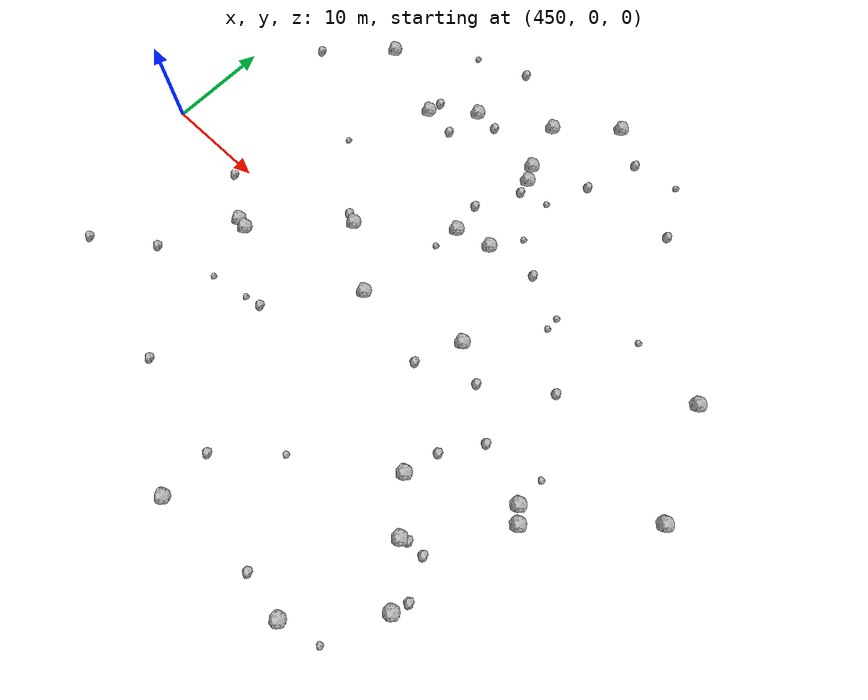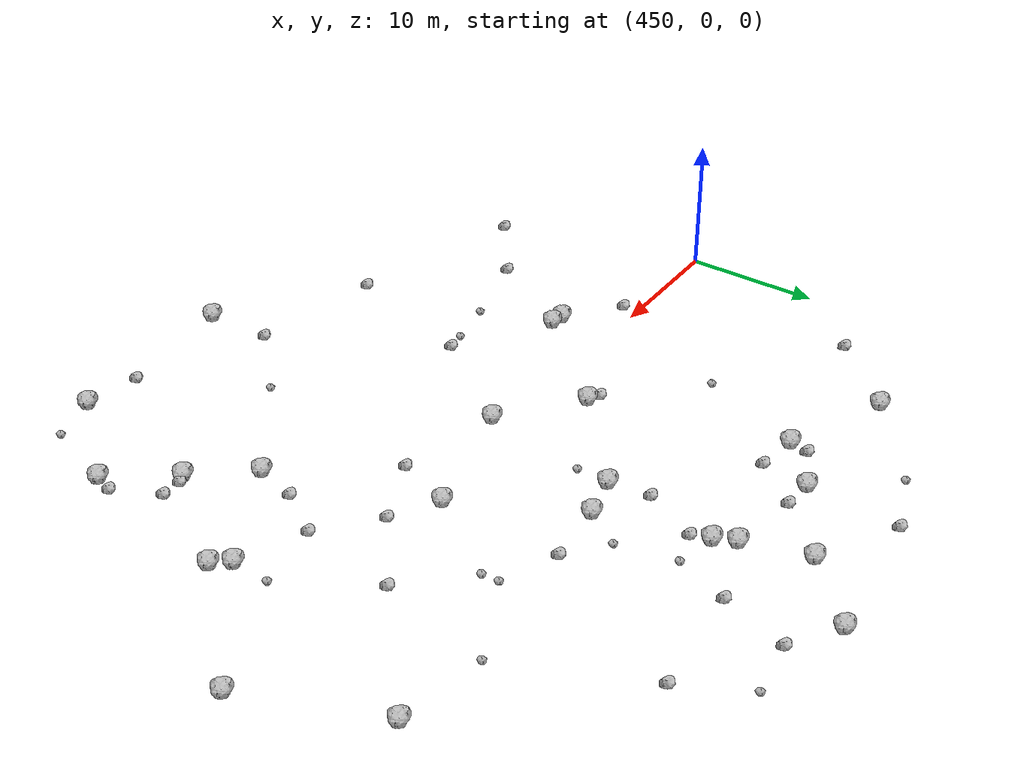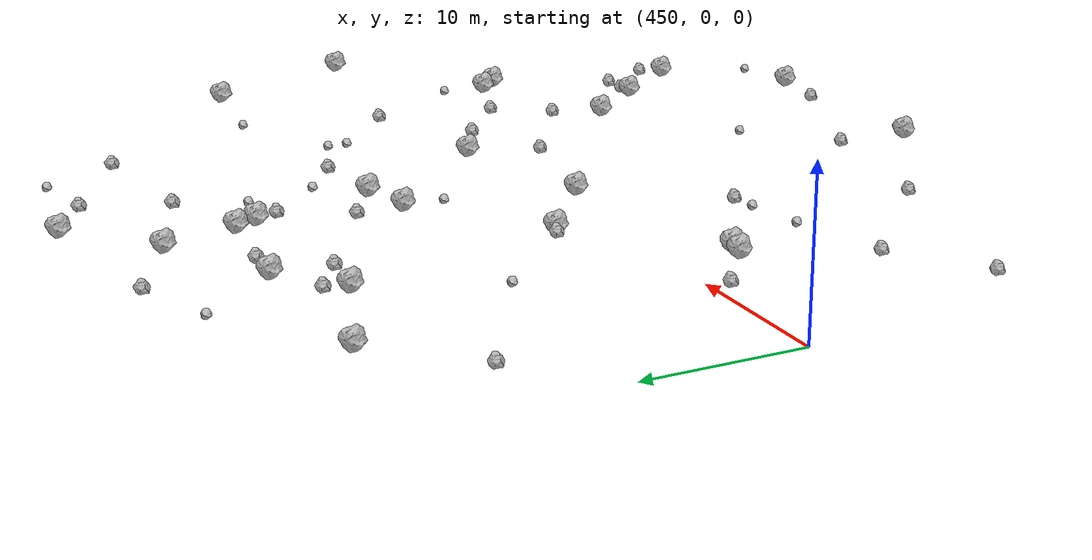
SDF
<sdf version="1.6">
 <world name="default">
  <include><uri>model://sun</uri></include>
  <model name="rock1_12_4">
   <include><uri>model://rock1</uri><pose>491.72888206127305 -26.128959061880327 0.5 0 0 0</pose></include>
  </model>
  <model name="rock1_12_5">
   <include><uri>model://rock1</uri><pose>491.17599531408433 -10.815141260491345 0.5 0 0 0</pose></include>
  </model>
  <model name="rock1_12_6">
   <include><uri>model://rock1</uri><pose>460.48094152049924 20.681704706840215 0.5 0 0 0</pose></include>
  </model>
  <model name="rock1_12_7">
   <include><uri>model://rock1</uri><pose>480.7092860227234 18.195234829523372 0.5 0 0 0</pose></include>
  </model>
  <model name="rock1_12_8">
   <include><uri>model://rock1</uri><pose>497.92684535685635 -19.54498118983572 0.5 0 0 0</pose></include>
  </model>
  <model name="rock1_12_9">
   <include><uri>model://rock1</uri><pose>471.52834381823504 3.124001189851157 0.5 0 0 0</pose></include>
  </model>
  <model name="rock1_12_10">
   <include><uri>model://rock1</uri><pose>468.1953937211347 17.523532336435686 0.5 0 0 0</pose></include>
  </model>
  <model name="rock1_12_11">
   <include><uri>model://rock1</uri><pose>479.9837642435969 19.723402124626624 0.5 0 0 0</pose></include>
  </model>
  <model name="rock1_12_12">
   <include><uri>model://rock1</uri><pose>500.904421001352 -7.401620335677297 0.5 0 0 0</pose></include>
  </model>
  <model name="rock1_12_13">
   <include><uri>model://rock1</uri><pose>482.6170549437636 10.220183432512592 0.5 0 0 0</pose></include>
  </model>
  <model name="rock1_12_14">
   <include><uri>model://rock1</uri><pose>478.67018094687296 24.5998001057999 0.5 0 0 0</pose></include>
  </model>
  <model name="rock1_12_15">
   <include><uri>model://rock1</uri><pose>494.52879217745857 -14.94457016396462 0.5 0 0 0</pose></include>
  </model>
  <model name="rock1_12_16">
   <include><uri>model://rock1</uri><pose>477.1940128024749 -1.283001773061308 0.5 0 0 0</pose></include>
  </model>
  <model name="rock1_12_17">
   <include><uri>model://rock1</uri><pose>483.8165759689294 29.213430397865274 0.5 0 0 0</pose></include>
  </model>
  <model name="rock1_12_18">
   <include><uri>model://rock1</uri><pose>487.08707115971083 1.2791204138350345 0.5 0 0 0</pose></include>
  </model>
  <model name="rock1_12_19">
   <include><uri>model://rock1</uri><pose>463.2533776544142 -4.206330978312472 0.5 0 0 0</pose></include>
  </model>
  <model name="rock1_12_20">
   <include><uri>model://rock1</uri><pose>477.8085389269301 -26.234081930782832 0.5 0 0 0</pose></include>
  </model>
  <model name="rock1_12_21">
   <include><uri>model://rock1</uri><pose>479.19385402026546 9.399088489368957 0.5 0 0 0</pose></include>
  </model>
  <model name="rock1_12_22">
   <include><uri>model://rock1</uri><pose>499.89984855608986 -6.163544614067344 0.5 0 0 0</pose></include>
  </model>
  <model name="rock1_12_23">
   <include><uri>model://rock1</uri><pose>464.290573639635 -4.399144057075212 0.5 0 0 0</pose></include>
  </model>
  <model name="rock1_12_24">
   <include><uri>model://rock1</uri><pose>505.8816212564168 11.201234541996989 0.5 0 0 0</pose></include>
  </model>
  <model name="rock1_12_25">
   <include><uri>model://rock1</uri><pose>509.7269249653844 1.0088039233548827 0.5 0 0 0</pose></include>
  </model>
  <model name="rock1_12_26">
   <include><uri>model://rock1</uri><pose>472.03233614963636 20.72107175521505 0.5 0 0 0</pose></include>
  </model>
  <model name="rock2_12_0">
   <include><uri>model://rock2</uri><pose>498.44111659502505 -18.060554295487858 0.3 0 0 0</pose></include>
  </model>
  <model name="rock2_12_1">
   <include><uri>model://rock2</uri><pose>485.1757674491042 -3.019661768036535 0.3 0 0 0</pose></include>
  </model>
  <model name="rock2_12_2">
   <include><uri>model://rock2</uri><pose>454.18306743369857 -15.275134052766337 0.3 0 0 0</pose></include>
  </model>
  <model name="rock2_12_3">
   <include><uri>model://rock2</uri><pose>495.16352626441653 -14.636084939600833 0.3 0 0 0</pose></include>
  </model>
  <model name="rock2_12_4">
   <include><uri>model://rock2</uri><pose>459.6547559318826 -11.431302299452756 0.3 0 0 0</pose></include>
  </model>
  <model name="rock2_12_5">
   <include><uri>model://rock2</uri><pose>492.1396244756645 -7.598512848185621 0.3 0 0 0</pose></include>
  </model>
  <model name="rock2_12_6">
   <include><uri>model://rock2</uri><pose>467.62306688191813 -19.156819430934796 0.3 0 0 0</pose></include>
  </model>
  <model name="rock2_12_7">
   <include><uri>model://rock2</uri><pose>481.0235505046594 16.773755753798582 0.3 0 0 0</pose></include>
  </model>
  <model name="rock2_12_8">
   <include><uri>model://rock2</uri><pose>487.53545522453385 10.777544856605736 0.3 0 0 0</pose></include>
  </model>
  <model name="rock2_12_9">
   <include><uri>model://rock2</uri><pose>490.51806880755737 -0.7307137112501998 0.3 0 0 0</pose></include>
  </model>
  <model name="rock2_12_10">
   <include><uri>model://rock2</uri><pose>474.4028412640686 20.58903284555319 0.3 0 0 0</pose></include>
  </model>
  <model name="rock2_12_11">
   <include><uri>model://rock2</uri><pose>477.7363747215456 -21.238094994688666 0.3 0 0 0</pose></include>
  </model>
  <model name="rock2_12_12">
   <include><uri>model://rock2</uri><pose>496.83416441290876 -14.636435170432176 0.3 0 0 0</pose></include>
  </model>
  <model name="rock2_12_13">
   <include><uri>model://rock2</uri><pose>472.589316262667 27.835865965476458 0.3 0 0 0</pose></include>
  </model>
  <model name="rock2_12_14">
   <include><uri>model://rock2</uri><pose>494.3047486482751 22.691186835858765 0.3 0 0 0</pose></include>
  </model>
  <model name="rock2_12_15">
   <include><uri>model://rock2</uri><pose>471.35420527582414 17.11425319643468 0.3 0 0 0</pose></include>
  </model>
  <model name="rock2_12_16">
   <include><uri>model://rock2</uri><pose>487.3299809690969 -25.39062976253008 0.3 0 0 0</pose></include>
  </model>
  <model name="rock2_12_17">
   <include><uri>model://rock2</uri><pose>494.599847798439 -4.133449309645719 0.3 0 0 0</pose></include>
  </model>
  <model name="rock2_12_18">
   <include><uri>model://rock2</uri><pose>468.43361046702523 19.004785582666564 0.3 0 0 0</pose></include>
  </model>
  <model name="rock2_12_19">
   <include><uri>model://rock2</uri><pose>471.1275022175073 -8.876029414873091 0.3 0 0 0</pose></include>
  </model>
  <model name="rock2_12_20">
   <include><uri>model://rock2</uri><pose>478.78277877238475 12.562917891764357 0.3 0 0 0</pose></include>
  </model>
  <model name="rock2_12_21">
   <include><uri>model://rock2</uri><pose>454.93236597993626 15.3007915303645 0.3 0 0 0</pose></include>
  </model>
  <model name="rock2_12_22">
   <include><uri>model://rock2</uri><pose>459.23533668220927 -1.1421150407908733 0.3 0 0 0</pose></include>
  </model>
  <model name="rock2_12_23">
   <include><uri>model://rock2</uri><pose>487.3519903023625 26.914980637084213 0.3 0 0 0</pose></include>
  </model>
  <model name="rock2_12_24">
   <include><uri>model://rock2</uri><pose>485.46194787767666 21.72379238260703 0.3 0 0 0</pose></include>
  </model>
  <model name="rock2_12_25">
   <include><uri>model://rock2</uri><pose>470.50010990991547 3.5793593856813644 0.3 0 0 0</pose></include>
  </model>
  <model name="rock2_12_26">
   <include><uri>model://rock2</uri><pose>496.2298101425529 3.439617879520796 0.3 0 0 0</pose></include>
  </model>
  <model name="rock3_12_0">
   <include><uri>model://rock3</uri><pose>491.7863911508671 27.56409921449822 0.2 0 0 0</pose></include>
  </model>
  <model name="rock3_12_1">
   <include><uri>model://rock3</uri><pose>484.5069960854345 13.023004893222144 0.2 0 0 0</pose></include>
  </model>
  <model name="rock3_12_2">
   <include><uri>model://rock3</uri><pose>498.6748512791092 12.23505183729658 0.2 0 0 0</pose></include>
  </model>
  <model name="rock3_12_3">
   <include><uri>model://rock3</uri><pose>482.7514510301616 -16.690302523662655 0.2 0 0 0</pose></include>
  </model>
  <model name="rock3_12_4">
   <include><uri>model://rock3</uri><pose>495.46194094610337 -25.203947067526624 0.2 0 0 0</pose></include>
  </model>
  <model name="rock3_12_5">
   <include><uri>model://rock3</uri><pose>491.82880183096484 8.950651344576471 0.2 0 0 0</pose></include>
  </model>
  <model name="rock3_12_6">
   <include><uri>model://rock3</uri><pose>478.8341623457958 6.798768413473013 0.2 0 0 0</pose></include>
  </model>
  <model name="rock3_12_7">
   <include><uri>model://rock3</uri><pose>483.6721990843205 17.503809592049592 0.2 0 0 0</pose></include>
  </model>
  <model name="rock3_12_8">
   <include><uri>model://rock3</uri><pose>465.8181415476322 -9.876376674954294 0.2 0 0 0</pose></include>
  </model>
  <model name="rock3_12_9">
   <include><uri>model://rock3</uri><pose>491.8451671014993 7.636804249076768 0.2 0 0 0</pose></include>
  </model>
  <model name="rock3_12_10">
   <include><uri>model://rock3</uri><pose>467.56852580868303 25.93459078093703 0.2 0 0 0</pose></include>
  </model>
  <model name="rock3_12_11">
   <include><uri>model://rock3</uri><pose>464.60168325164375 9.422518163628474 0.2 0 0 0</pose></include>
  </model>
  <model name="rock3_12_12">
   <include><uri>model://rock3</uri><pose>500.03484111709184 -3.2693908287275804 0.2 0 0 0</pose></include>
  </model>
  <model name="rock3_12_13">
   <include><uri>model://rock3</uri><pose>469.5256823193855 -9.17871848414558 0.2 0 0 0</pose></include>
  </model>
 </world>
</sdf>
